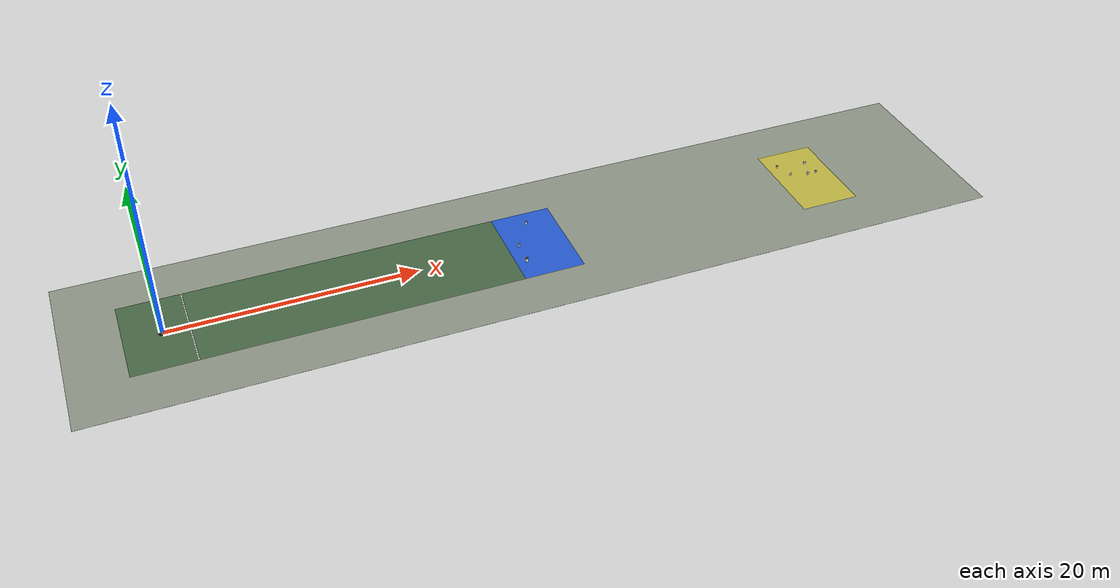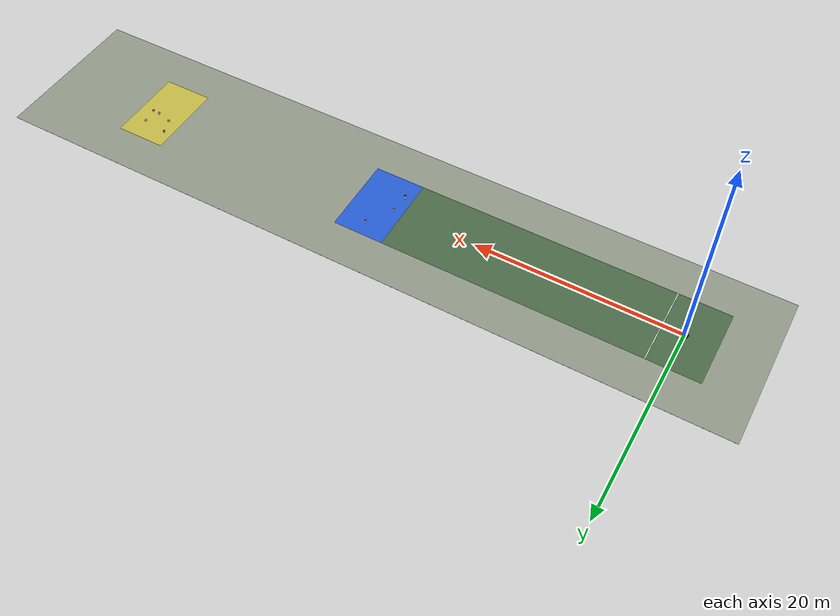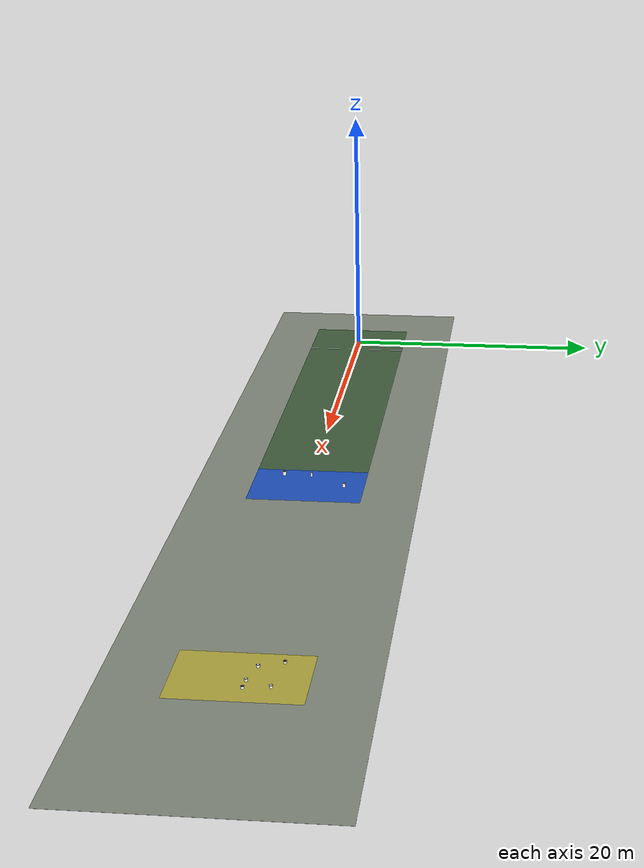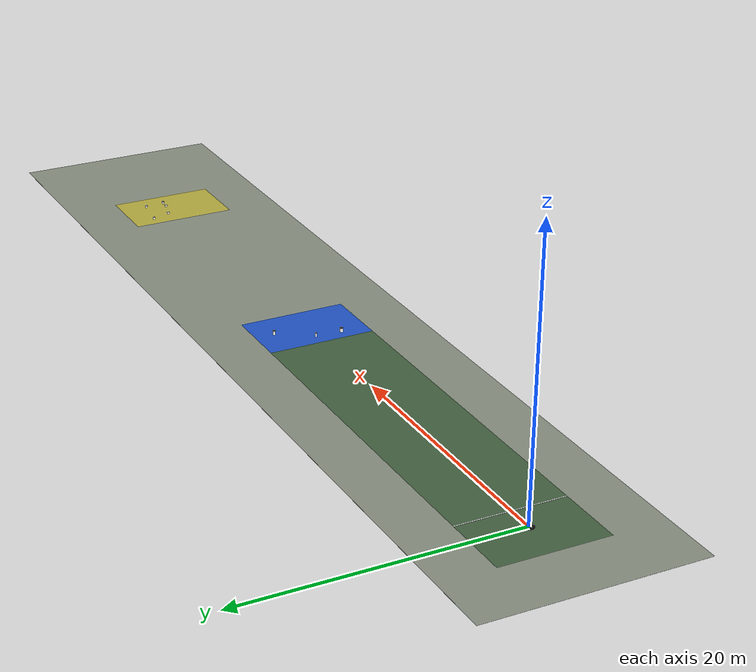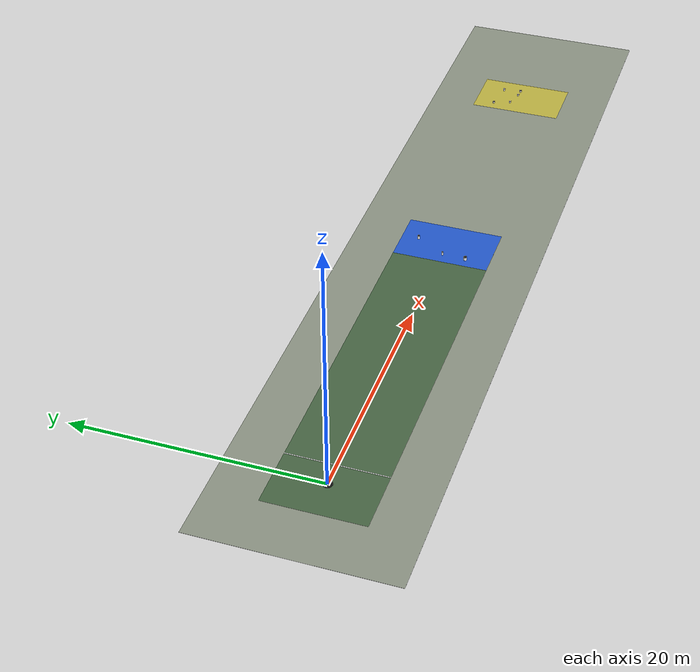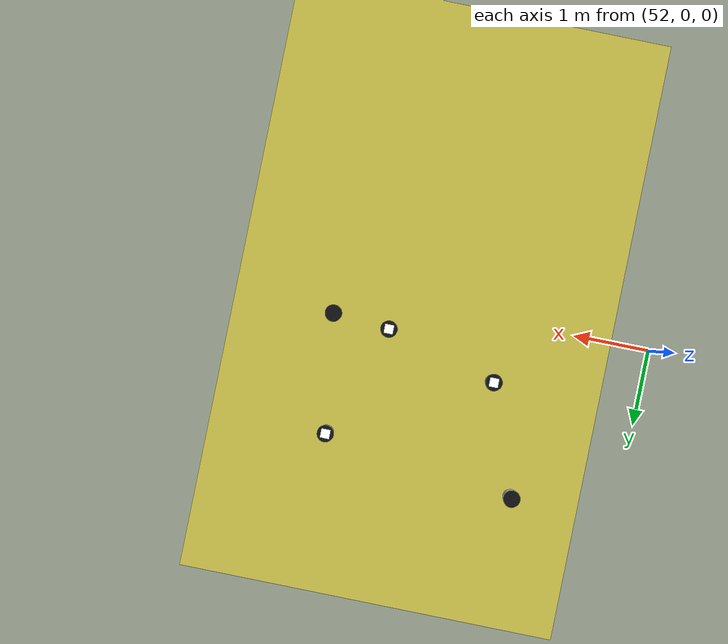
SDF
<sdf version="1.9">
 <world name="cuadc_rescue_single">
  <physics name="1ms" type="ignore">
   <max_step_size>0.001</max_step_size>
   <real_time_factor>1.0</real_time_factor>
  </physics>
  <plugin filename="gz-sim-physics-system" name="gz::sim::systems::Physics"/>
  <plugin filename="gz-sim-sensors-system" name="gz::sim::systems::Sensors">
   <render_engine>ogre2</render_engine>
  </plugin>
  <plugin filename="gz-sim-user-commands-system" name="gz::sim::systems::UserCommands"/>
  <plugin filename="gz-sim-scene-broadcaster-system" name="gz::sim::systems::SceneBroadcaster"/>
  <plugin filename="gz-sim-imu-system" name="gz::sim::systems::Imu"/>
  <plugin filename="gz-sim-navsat-system" name="gz::sim::systems::NavSat"/>
  <scene><ambient>1.0 1.0 1.0</ambient><background>0.78 0.80 0.82</background></scene>
  <spherical_coordinates>
   <latitude_deg>-35.363262</latitude_deg>
   <longitude_deg>149.165237</longitude_deg>
   <elevation>584</elevation>
   <heading_deg>0</heading_deg>
   <surface_model>EARTH_WGS84</surface_model>
  </spherical_coordinates>
  <light type="directional" name="sun">
   <pose>0 0 20 0 0 0</pose>
   <diffuse>0.9 0.9 0.85 1</diffuse>
   <specular>0.6 0.6 0.6 1</specular>
   <attenuation>
    <range>1000</range>
    <constant>0.9</constant>
    <linear>0.01</linear>
    <quadratic>0.001</quadratic>
   </attenuation>
   <direction>-0.45 0.15 -0.88</direction>
  </light>
  <include><name>cuadc_field</name><uri>model://cuadc_field</uri></include>
  <include><name>takeoff_pad</name><uri>model://takeoff_pad</uri><pose>0 0 0.01 0 0 0.0</pose></include>
  <include><name>drop_1</name><uri>model://drop_bucket_15</uri><pose>28.44 0.02 0 0 0 0.0</pose></include>
  <include><name>drop_2</name><uri>model://drop_bucket_20</uri><pose>30.05 2.56 0 0 0 0.0</pose></include>
  <include><name>drop_3</name><uri>model://drop_bucket_25</uri><pose>28.37 -1.96 0 0 0 0.0</pose></include>
  <include><name>recon_1</name><uri>model://recon_bucket</uri><pose>55.41 0.4 0 0 0 0.0</pose></include>
  <include><name>recon_2</name><uri>model://recon_bucket</uri><pose>56.16 0.34 0 0 0 0.0</pose></include>
  <include><name>recon_3</name><uri>model://recon_bucket</uri><pose>55.95 1.9 0 0 0 0.0</pose></include>
  <include><name>recon_4</name><uri>model://recon_bucket</uri><pose>53.93 0.81 0 0 0 0.0</pose></include>
  <include><name>recon_5</name><uri>model://recon_bucket</uri><pose>53.4 2.25 0 0 0 0.0</pose></include>
  <model name="hazard_toxic_recon_4">
   <static>true</static>
   <pose>53.93 0.81 0.165 0 0 -1.57079632679</pose>
   <link name="link">
    <visual name="marker">
     <geometry><box><size>0.12 0.12 0.004</size></box></geometry>
     <material>
      <diffuse>1 1 1 1</diffuse>
      <pbr>
       <metal>
        <albedo_map>model://hazard_marker/materials/textures/toxic.png</albedo_map>
        <roughness>0.65</roughness>
        <metalness>0</metalness>
       </metal>
      </pbr>
     </material>
    </visual>
   </link>
  </model>
  <model name="hazard_biohazard_recon_1">
   <static>true</static>
   <pose>55.41 0.4 0.165 0 0 3.14159265359</pose>
   <link name="link">
    <visual name="marker">
     <geometry><box><size>0.12 0.12 0.004</size></box></geometry>
     <material>
      <diffuse>1 1 1 1</diffuse>
      <pbr>
       <metal>
        <albedo_map>model://hazard_marker/materials/textures/biohazard.png</albedo_map>
        <roughness>0.65</roughness>
        <metalness>0</metalness>
       </metal>
      </pbr>
     </material>
    </visual>
   </link>
  </model>
  <model name="hazard_radioactive_recon_3">
   <static>true</static>
   <pose>55.95 1.9 0.165 0 0 3.14159265359</pose>
   <link name="link">
    <visual name="marker">
     <geometry><box><size>0.12 0.12 0.004</size></box></geometry>
     <material>
      <diffuse>1 1 1 1</diffuse>
      <pbr>
       <metal>
        <albedo_map>model://hazard_marker/materials/textures/radioactive.png</albedo_map>
        <roughness>0.65</roughness>
        <metalness>0</metalness>
       </metal>
      </pbr>
     </material>
    </visual>
   </link>
  </model>
 </world>
</sdf>

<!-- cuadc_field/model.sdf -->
<sdf version="1.9">
  <model name="cuadc_field">
    <static>true</static>
    <link name="link">
      <visual name="ground">
        <pose>30 0 -0.006 0 0 0</pose>
        <geometry><box><size>75 16 0.01</size></box></geometry>
        <material><ambient>0.55 0.58 0.52 1</ambient><diffuse>0.55 0.58 0.52 1</diffuse></material>
      </visual>
      <visual name="takeoff_area">
        <pose>13.5 0 0.001 0 0 0</pose>
        <geometry><box><size>33 8 0.003</size></box></geometry>
        <material><ambient>0.18 0.35 0.18 0.65</ambient><diffuse>0.18 0.35 0.18 0.65</diffuse></material>
      </visual>
      <visual name="takeoff_line">
        <pose>2 0 0.006 0 0 0</pose>
        <geometry><box><size>0.08 8 0.006</size></box></geometry>
        <material><ambient>1 1 1 1</ambient><diffuse>1 1 1 1</diffuse></material>
      </visual>
      <visual name="drop_area">
        <pose>30 0 0.002 0 0 0</pose>
        <geometry><box><size>5 8 0.004</size></box></geometry>
        <material><ambient>0.05 0.32 0.95 0.75</ambient><diffuse>0.05 0.32 0.95 0.75</diffuse></material>
      </visual>
      <visual name="recon_area">
        <pose>55 0 0.002 0 0 0</pose>
        <geometry><box><size>5 8 0.004</size></box></geometry>
        <material><ambient>0.95 0.85 0.10 0.55</ambient><diffuse>0.95 0.85 0.10 0.55</diffuse></material>
      </visual>
    </link>
  </model>
</sdf>

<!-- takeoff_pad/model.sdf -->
<sdf version="1.9">
  <model name="takeoff_pad">
    <static>true</static>
    <link name="link">
      <visual name="pad">
        <pose>0 0 0.002 0 0 0</pose>
        <geometry><cylinder><radius>0.4</radius><length>0.004</length></cylinder></geometry>
        <material><ambient>0.05 0.05 0.05 1</ambient><diffuse>0.05 0.05 0.05 1</diffuse></material>
      </visual>
      <visual name="h_left">
        <pose>0 -0.12 0.008 0 0 0</pose>
        <geometry><box><size>0.34 0.06 0.004</size></box></geometry>
        <material><ambient>1 1 1 1</ambient><diffuse>1 1 1 1</diffuse></material>
      </visual>
      <visual name="h_right">
        <pose>0 0.12 0.008 0 0 0</pose>
        <geometry><box><size>0.34 0.06 0.004</size></box></geometry>
        <material><ambient>1 1 1 1</ambient><diffuse>1 1 1 1</diffuse></material>
      </visual>
      <visual name="h_mid">
        <pose>0 0 0.009 0 0 0</pose>
        <geometry><box><size>0.07 0.28 0.004</size></box></geometry>
        <material><ambient>1 1 1 1</ambient><diffuse>1 1 1 1</diffuse></material>
      </visual>
    </link>
  </model>
</sdf>

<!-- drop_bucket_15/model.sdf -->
<sdf version="1.9">
  <model name="drop_bucket_15">
    <static>true</static>
    <link name="link">
      <visual name="body">
        <pose>0 0 0.15 0 0 0</pose>
        <geometry><cylinder><radius>0.075</radius><length>0.30</length></cylinder></geometry>
        <material><ambient>1 1 1 1</ambient><diffuse>1 1 1 1</diffuse></material>
      </visual>
      <visual name="rim">
        <pose>0 0 0.305 0 0 0</pose>
        <geometry><cylinder><radius>0.085</radius><length>0.012</length></cylinder></geometry>
        <material><ambient>0.05 0.05 0.05 1</ambient><diffuse>0.05 0.05 0.05 1</diffuse></material>
      </visual>
      <collision name="collision">
        <pose>0 0 0.15 0 0 0</pose>
        <geometry><cylinder><radius>0.075</radius><length>0.30</length></cylinder></geometry>
      </collision>
    </link>
  </model>
</sdf>

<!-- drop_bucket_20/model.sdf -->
<sdf version="1.9">
  <model name="drop_bucket_20">
    <static>true</static>
    <link name="link">
      <visual name="body">
        <pose>0 0 0.15 0 0 0</pose>
        <geometry><cylinder><radius>0.10</radius><length>0.30</length></cylinder></geometry>
        <material><ambient>1 1 1 1</ambient><diffuse>1 1 1 1</diffuse></material>
      </visual>
      <visual name="rim">
        <pose>0 0 0.305 0 0 0</pose>
        <geometry><cylinder><radius>0.112</radius><length>0.012</length></cylinder></geometry>
        <material><ambient>0.05 0.05 0.05 1</ambient><diffuse>0.05 0.05 0.05 1</diffuse></material>
      </visual>
      <collision name="collision">
        <pose>0 0 0.15 0 0 0</pose>
        <geometry><cylinder><radius>0.10</radius><length>0.30</length></cylinder></geometry>
      </collision>
    </link>
  </model>
</sdf>

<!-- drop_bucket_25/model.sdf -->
<sdf version="1.9">
  <model name="drop_bucket_25">
    <static>true</static>
    <link name="link">
      <visual name="body">
        <pose>0 0 0.15 0 0 0</pose>
        <geometry><cylinder><radius>0.125</radius><length>0.30</length></cylinder></geometry>
        <material><ambient>1 1 1 1</ambient><diffuse>1 1 1 1</diffuse></material>
      </visual>
      <visual name="rim">
        <pose>0 0 0.305 0 0 0</pose>
        <geometry><cylinder><radius>0.137</radius><length>0.012</length></cylinder></geometry>
        <material><ambient>0.05 0.05 0.05 1</ambient><diffuse>0.05 0.05 0.05 1</diffuse></material>
      </visual>
      <collision name="collision">
        <pose>0 0 0.15 0 0 0</pose>
        <geometry><cylinder><radius>0.125</radius><length>0.30</length></cylinder></geometry>
      </collision>
    </link>
  </model>
</sdf>

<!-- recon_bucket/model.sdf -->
<sdf version="1.9">
  <model name="recon_bucket">
    <static>true</static>
    <link name="link">
      <visual name="body">
        <pose>0 0 0.075 0 0 0</pose>
        <geometry><cylinder><radius>0.10</radius><length>0.15</length></cylinder></geometry>
        <material><ambient>1 1 1 1</ambient><diffuse>1 1 1 1</diffuse></material>
      </visual>
      <visual name="rim">
        <pose>0 0 0.155 0 0 0</pose>
        <geometry><cylinder><radius>0.112</radius><length>0.01</length></cylinder></geometry>
        <material><ambient>0.05 0.05 0.05 1</ambient><diffuse>0.05 0.05 0.05 1</diffuse></material>
      </visual>
      <collision name="collision">
        <pose>0 0 0.075 0 0 0</pose>
        <geometry><cylinder><radius>0.10</radius><length>0.15</length></cylinder></geometry>
      </collision>
    </link>
  </model>
</sdf>
